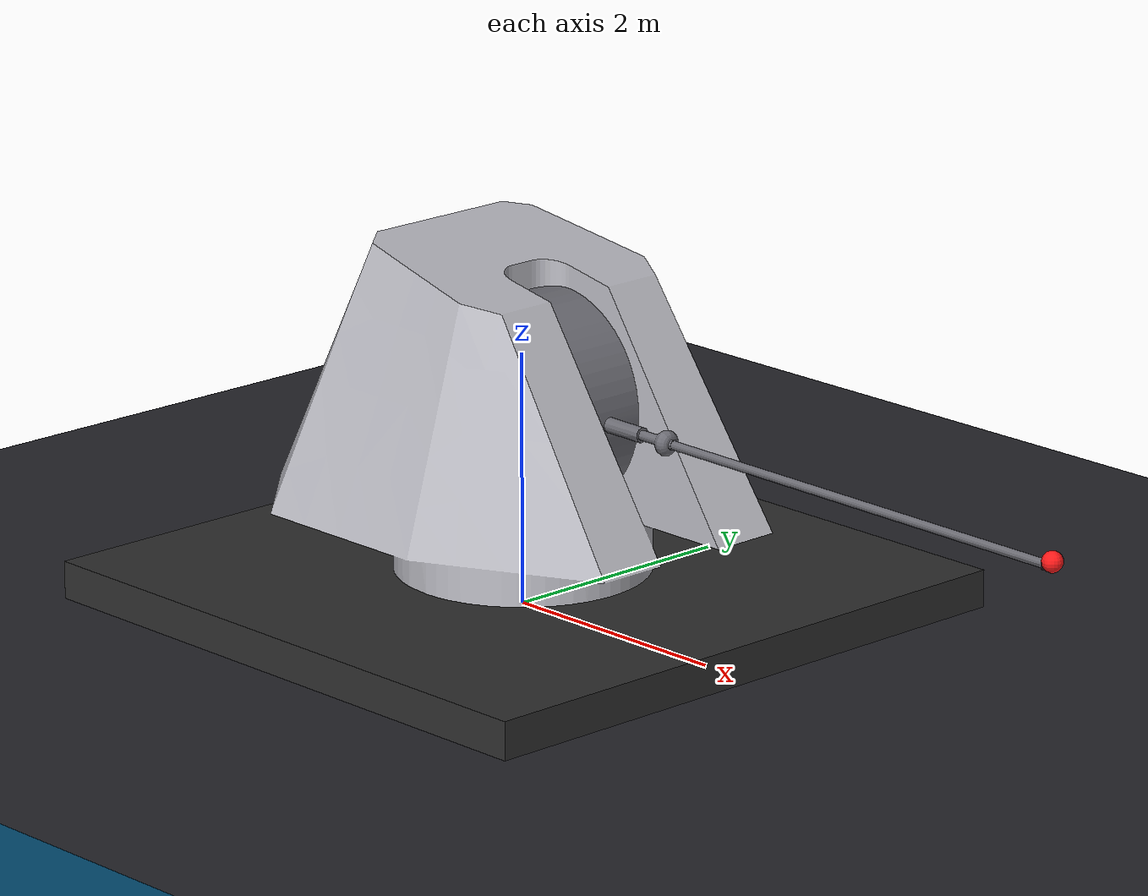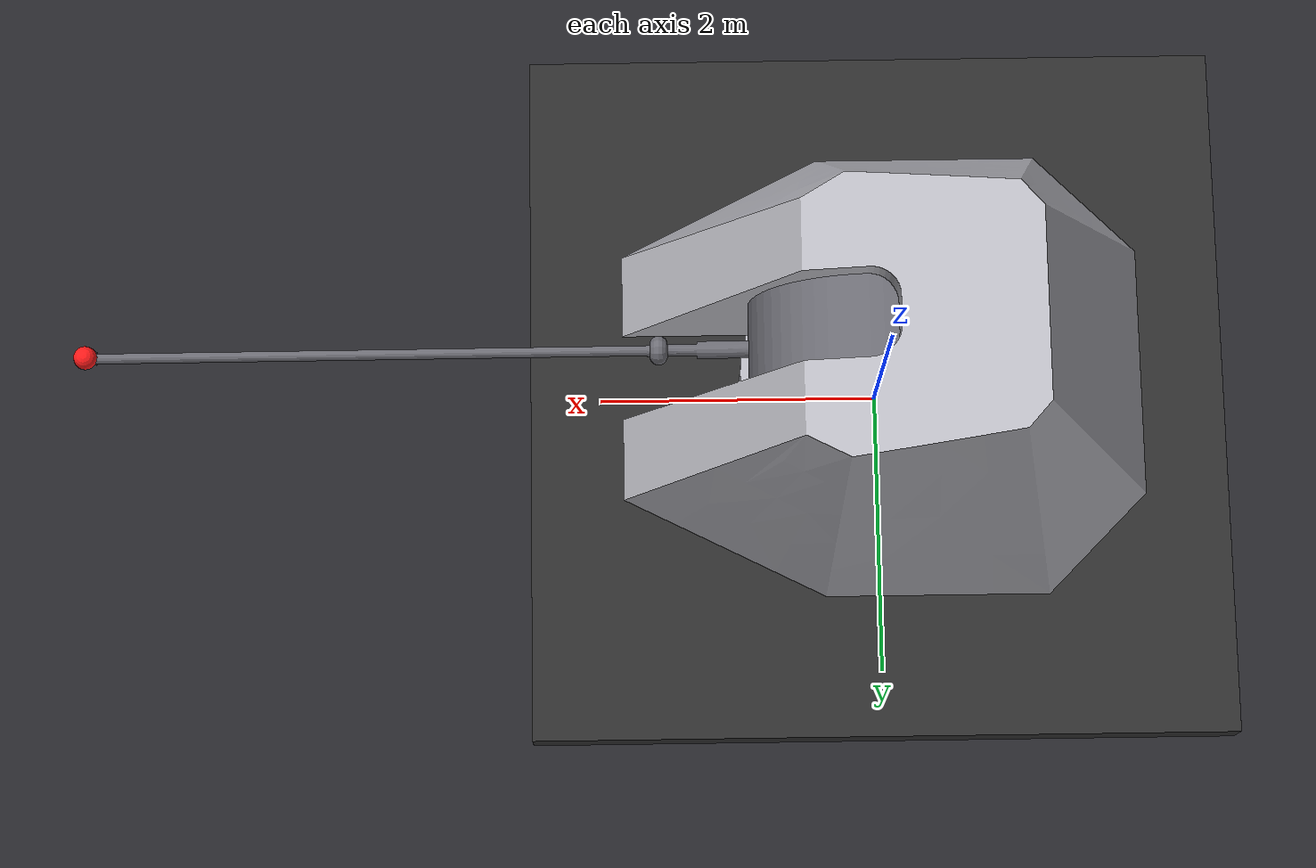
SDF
<?xml version="1.0"?>
<sdf version="1.10">
  <world name="heybeliada_gun_test_world">
    <physics name="physics" type="dart">
      <max_step_size>0.001</max_step_size>
      <real_time_factor>1.0</real_time_factor>
    </physics>

    <plugin filename="gz-sim-physics-system" name="gz::sim::systems::Physics"/>
    <plugin filename="gz-sim-user-commands-system" name="gz::sim::systems::UserCommands"/>
    <plugin filename="gz-sim-scene-broadcaster-system" name="gz::sim::systems::SceneBroadcaster"/>

    <light type="directional" name="sun">
      <cast_shadows>true</cast_shadows>
      <pose>0 0 10 0 0 0</pose>
      <diffuse>0.9 0.9 0.9 1</diffuse>
      <specular>0.2 0.2 0.2 1</specular>
      <direction>-0.5 0.2 -1</direction>
    </light>

    <model name="ground">
      <static>true</static>
      <link name="ground_link">
        <collision name="ground_collision">
          <geometry><plane><normal>0 0 1</normal><size>100 100</size></plane></geometry>
        </collision>
        <visual name="ground_visual">
          <geometry><plane><normal>0 0 1</normal><size>100 100</size></plane></geometry>
          <material>
            <ambient>0.08 0.08 0.09 1</ambient>
            <diffuse>0.15 0.15 0.17 1</diffuse>
          </material>
        </visual>
      </link>
    </model>

    <include>
      <uri>model://heybeliada_gun_test</uri>
      <pose>0 0 0.3 0 0 0</pose>
    </include>
    <!-- Sadece goruntu veren duz deniz yuzeyi -->
    <model name="visual_ocean">
      <static>true</static>

      <!-- x y z roll pitch yaw -->
      <pose>0 0  -2.0 0 0 0</pose>

      <link name="ocean_link">
        <visual name="ocean_visual">
          <cast_shadows>false</cast_shadows>

          <geometry>
            <plane>
              <normal>0 0 1</normal>
              <size>2000 2000</size>
            </plane>
          </geometry>

          <material>
            <ambient>0.01 0.12 0.20 1</ambient>
            <diffuse>0.01 0.30 0.46 1</diffuse>
            <specular>0.30 0.50 0.60 1</specular>

            <pbr>
              <metal>
                <roughness>0.18</roughness>
                <metalness>0.0</metalness>
              </metal>
            </pbr>
          </material>
        </visual>
      </link>
    </model>
  </world>
</sdf>

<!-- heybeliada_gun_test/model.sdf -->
<sdf version="1.10">
  <model name="heybeliada_gun_test">
    <static>false</static>
    <self_collide>false</self_collide>

    <!-- Sabit test platformu -->
    <link name="base_link">
      <inertial>
        <mass>500</mass>
        <inertia>
          <ixx>500</ixx><iyy>500</iyy><izz>500</izz>
          <ixy>0</ixy><ixz>0</ixz><iyz>0</iyz>
        </inertia>
      </inertial>
      <collision name="base_collision">
        <pose>0 0 -0.15 0 0 0</pose>
        <geometry><box><size>5 5 0.3</size></box></geometry>
      </collision>
      <visual name="base_visual">
        <pose>0 0 -0.15 0 0 0</pose>
        <geometry><box><size>5 5 0.3</size></box></geometry>
        <material>
          <ambient>0.12 0.12 0.12 1</ambient>
          <diffuse>0.18 0.18 0.18 1</diffuse>
        </material>
      </visual>
    </link>

    <joint name="base_fixed_joint" type="fixed">
      <parent>world</parent>
      <child>base_link</child>
    </joint>

    <!-- Z ekseni etrafında sağ-sol dönen dış kaporta -->
    <link name="pan_link">
      <pose>0 0 0 0 0 0</pose>
      <inertial>
        <pose>0 0 1.2 0 0 0</pose>
        <mass>80</mass>
        <inertia>
          <ixx>90</ixx><iyy>90</iyy><izz>120</izz>
          <ixy>0</ixy><ixz>0</ixz><iyz>0</iyz>
        </inertia>
      </inertial>
      <visual name="pan_visual">
        <geometry>
          <mesh><uri>model://heybeliada_gun_test/meshes/turret_pan.obj</uri></mesh>
        </geometry>
        <material>
          <ambient>0.55 0.55 0.58 1</ambient>
          <diffuse>0.72 0.72 0.75 1</diffuse>
        </material>
      </visual>
      <collision name="pan_collision">
        <pose>0 0 1.25 0 0 0</pose>
        <geometry><cylinder><radius>1.75</radius><length>2.5</length></cylinder></geometry>
      </collision>
    </link>

    <joint name="pan_joint" type="revolute">
      <parent>base_link</parent>
      <child>pan_link</child>
      <axis>
        <xyz>0 0 1</xyz>
        <limit>
          <lower>-2.617994</lower>
          <upper>2.617994</upper>
          <effort>100000</effort>
          <velocity>0.8</velocity>
        </limit>
        <dynamics><damping>15</damping><friction>2</friction></dynamics>
      </axis>
    </joint>

    <!-- CAD içindeki gerçek yatay dönme merkezi: pan merkezine göre x=0.113315 m, z=1.351354 m -->
    <link name="tilt_link">
      <pose>0.113315 0 1.351354 0 0 0</pose>
      <inertial>
        <pose>1.5 0 0 0 0 0</pose>
        <mass>35</mass>
        <inertia>
          <ixx>30</ixx><iyy>100</iyy><izz>100</izz>
          <ixy>0</ixy><ixz>0</ixz><iyz>0</iyz>
        </inertia>
      </inertial>
      <visual name="tilt_visual">
        <geometry>
          <mesh><uri>model://heybeliada_gun_test/meshes/gun_tilt.obj</uri></mesh>
        </geometry>
        <material>
          <ambient>0.28 0.28 0.30 1</ambient>
          <diffuse>0.42 0.42 0.45 1</diffuse>
        </material>
      </visual>
      <collision name="tilt_collision">
        <pose>2.2 0 0 0 0 0</pose>
        <geometry><box><size>5.2 1.4 1.5</size></box></geometry>
      </collision>

      <!-- Daha sonra ball_spawner için referans alacağımız görünmez namlu çıkış çerçevesi -->
      <visual name="muzzle_marker">
        <pose>5.35 0 0 0 0 0</pose>
        <geometry><sphere><radius>0.08</radius></sphere></geometry>
        <material>
          <ambient>1 0.1 0.1 1</ambient>
          <diffuse>1 0.1 0.1 1</diffuse>
        </material>
      </visual>
    </link>

    <joint name="tilt_joint" type="revolute">
      <parent>pan_link</parent>
      <child>tilt_link</child>
      <axis>
        <xyz>0 -1 0</xyz>
        <limit>
          <lower>-0.0872665</lower>
          <upper>1.2217305</upper>
          <effort>100000</effort>
          <velocity>0.6</velocity>
        </limit>
        <dynamics><damping>10</damping><friction>1</friction></dynamics>
      </axis>
    </joint>

    <!-- Uyumluluk testi için PID yerine kararlı hız tabanlı konum kontrolü -->
    <plugin filename="gz-sim-joint-position-controller-system"
            name="gz::sim::systems::JointPositionController">
      <joint_name>pan_joint</joint_name>
      <topic>/heybeliada/pan_cmd</topic>
      <use_velocity_commands>true</use_velocity_commands>
      <cmd_max>0.35</cmd_max>
      <initial_position>0.0</initial_position>
    </plugin>

    <plugin filename="gz-sim-joint-position-controller-system"
            name="gz::sim::systems::JointPositionController">
      <joint_name>tilt_joint</joint_name>
      <topic>/heybeliada/tilt_cmd</topic>
      <use_velocity_commands>true</use_velocity_commands>
      <cmd_max>0.20</cmd_max>
      <initial_position>0.0</initial_position>
    </plugin>

    <plugin filename="gz-sim-joint-state-publisher-system"
            name="gz::sim::systems::JointStatePublisher"/>
  </model>
</sdf>
